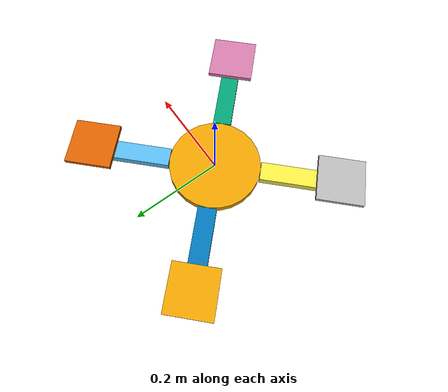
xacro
<?xml version='1.0'?>

<robot name="rodrone" xmlns:xacro="http://www.ros.org/wiki/xacro">

  <link name='center_frame'>
    <pose>0 0 0.1 0 0 0</pose>

    <inertial>
      <mass value="15.0"/>
      <origin xyz="0.0 0 0.1" rpy=" 0 0 0"/>
      <inertia
          ixx="0.1" ixy="0" ixz="0"
          iyy="0.1" iyz="0"
          izz="0.1"
      />
    </inertial>

    <collision name='collision'>
      <geometry>
        <cylinder length="0.02" radius="0.1"/>
      </geometry>
    </collision>

    <visual name='center_frame_visual'>
      <origin xyz="0 0 0" rpy=" 0 0 0"/>
      <geometry>
        <cylinder length="0.02" radius="0.1"/>
      </geometry>
    </visual>
  </link>

  <link name="pos_pos_arm">
    <collision name="collision">
      <origin xyz="0.1 0 0" rpy="0 0 0"/>
      <geometry>
        <box size="0.2 0.04 0.02"/>
      </geometry>
    </collision>
    <visual name="pos_pos_arm_visual">
      <origin xyz="0.1 0 0" rpy="0 0 0"/>
      <geometry>
        <box size="0.2 0.04 0.02"/>
      </geometry>
    </visual>
    <inertial>
      <origin xyz="0.1 0 0" rpy="0 0 0"/>
      <mass value="5"/>
      <inertia
        ixx=".1" ixy="0.0" ixz="0.0"
        iyy=".1" iyz="0.0"
        izz=".1"/>
    </inertial>
  </link>

  <link name="neg_pos_arm">
    <collision name="collision">
      <origin xyz="0.1 0 0" rpy="0 0 0"/>
      <geometry>
        <box size="0.2 0.04 0.02"/>
      </geometry>
    </collision>
    <visual name="neg_pos_arm_visual">
      <origin xyz="0.1 0 0" rpy="0 0 0"/>
      <geometry>
        <box size="0.2 0.04 0.02"/>
      </geometry>
    </visual>
    <inertial>
      <origin xyz="0.1 0 0" rpy="0 0 0"/>
      <mass value="5"/>
      <inertia
        ixx=".1" ixy="0.0" ixz="0.0"
        iyy=".1" iyz="0.0"
        izz=".1"/>
    </inertial>
  </link>

  <link name="neg_neg_arm">
    <collision name="collision">
      <origin xyz="0.1 0 0" rpy="0 0 0"/>
      <geometry>
        <box size="0.2 0.04 0.02"/>
      </geometry>
    </collision>
    <visual name="neg_neg_arm_visual">
      <origin xyz="0.1 0 0" rpy="0 0 0"/>
      <geometry>
        <box size="0.2 0.04 0.02"/>
      </geometry>
    </visual>
    <inertial>
      <origin xyz="0.1 0 0" rpy="0 0 0"/>
      <mass value="5"/>
      <inertia
        ixx=".1" ixy="0.0" ixz="0.0"
        iyy=".1" iyz="0.0"
        izz=".1"/>
    </inertial>
  </link>

  <link name="pos_neg_arm">
    <collision name="collision">
      <origin xyz="0.1 0 0" rpy="0 0 0"/>
      <geometry>
        <box size="0.2 0.04 0.02"/>
      </geometry>
    </collision>
    <visual name="pos_neg_arm_visual">
      <origin xyz="0.1 0 0" rpy="0 0 0"/>
      <geometry>
        <box size="0.2 0.04 0.02"/>
      </geometry>
    </visual>
    <inertial>
      <origin xyz="0.1 0 0" rpy="0 0 0"/>
      <mass value="5"/>
      <inertia
        ixx=".1" ixy="0.0" ixz="0.0"
        iyy=".1" iyz="0.0"
        izz=".1"/>
    </inertial>
  </link>

  <link name="pos_pos_rotor">
    <collision name="collision">
      <origin xyz="0 0 0" rpy="0 0 0"/>
      <geometry>
        <cylinder length="0.01" radius="0.05"/>
      </geometry>
    </collision>
    <visual name="pos_pos_rotor_visual">
      <origin xyz="0 0 0" rpy="0 0 0"/>
      <geometry>
        <box size="0.1 0.1 0.01"/>
      </geometry>
    </visual>
    <inertial>
      <origin xyz="0.1 0 0" rpy="0 0 0"/>
      <mass value="5"/>
      <inertia
        ixx=".1" ixy="0.0" ixz="0.0"
        iyy=".1" iyz="0.0"
        izz=".1"/>
    </inertial>
  </link>

  <link name="neg_pos_rotor">
    <collision name="collision">
      <origin xyz="0 0 0" rpy="0 0 0"/>
      <geometry>
        <cylinder length="0.01" radius="0.05"/>
      </geometry>
    </collision>
    <visual name="neg_pos_rotor_visual">
      <origin xyz="0 0 0" rpy="0 0 0"/>
      <geometry>
        <box size="0.1 0.1 0.01"/>
      </geometry>
    </visual>
    <inertial>
      <origin xyz="0.1 0 0" rpy="0 0 0"/>
      <mass value="5"/>
      <inertia
        ixx=".1" ixy="0.0" ixz="0.0"
        iyy=".1" iyz="0.0"
        izz=".1"/>
    </inertial>
  </link>

  <link name="neg_neg_rotor">
    <collision name="collision">
      <origin xyz="0 0 0" rpy="0 0 0"/>
      <geometry>
        <cylinder length="0.01" radius="0.05"/>
      </geometry>
    </collision>
    <visual name="neg_neg_rotor_visual">
      <origin xyz="0 0 0" rpy="0 0 0"/>
      <geometry>
        <box size="0.1 0.1 0.01"/>
      </geometry>
    </visual>
    <inertial>
      <origin xyz="0.1 0 0" rpy="0 0 0"/>
      <mass value="5"/>
      <inertia
        ixx=".1" ixy="0.0" ixz="0.0"
        iyy=".1" iyz="0.0"
        izz=".1"/>
    </inertial>
  </link>

  <link name="pos_neg_rotor">
    <collision name="collision">
      <origin xyz="0 0 0" rpy="0 -1.57079632679 0"/>
      <geometry>
        <cylinder length="0.01" radius="0.05"/>
      </geometry>
    </collision>
    <visual name="pos_neg_rotor_visual">
      <origin xyz="0 0 0" rpy="0 0 0"/>
      <geometry>
        <box size="0.1 0.1 0.01"/>
      </geometry>
    </visual>
    <inertial>
      <origin xyz="0.1 0 0" rpy="0 0 0"/>
      <mass value="5"/>
      <inertia
        ixx=".1" ixy="0.0" ixz="0.0"
        iyy=".1" iyz="0.0"
        izz=".1"/>
    </inertial>
  </link>

  <joint type="fixed" name="pos_pos_arm_joint">
    <origin xyz="0.0708 0.0708 0" rpy="0 0 0.78539816339"/>
    <child link="pos_pos_arm"/>
    <parent link="center_frame"/>
  </joint>

  <joint type="fixed" name="pos_neg_arm_joint">
    <origin xyz="-0.0708 0.0708 0" rpy="0 0 2.35619449019"/>
    <child link="pos_neg_arm"/>
    <parent link="center_frame"/>
  </joint>

  <joint type="fixed" name="neg_neg_arm_joint">
    <origin xyz="-0.0708 -0.0708 0" rpy="0 0 -2.35619449019"/>
    <child link="neg_neg_arm"/>
    <parent link="center_frame"/>
  </joint>

  <joint type="fixed" name="neg_pos_arm_joint">
    <origin xyz="0.0708 -0.0708 0" rpy="0 0 -0.78539816339"/>
    <child link="neg_pos_arm"/>
    <parent link="center_frame"/>
  </joint>

  <joint type="continuous" name="pos_pos_rotor_joint">
    <origin xyz="0.17 0 0.02" rpy="0 0 0"/>
    <child link="pos_pos_rotor"/>
    <parent link="pos_pos_arm"/>
    <axis xyz="0 0 1"/>
  </joint>

  <joint type="continuous" name="neg_pos_rotor_joint">
    <origin xyz="0.17 0 0.02" rpy="0 0 0"/>
    <child link="neg_pos_rotor"/>
    <parent link="neg_pos_arm"/>
    <axis xyz="0 0 1"/>
  </joint>

  <joint type="continuous" name="neg_neg_rotor_joint">
    <origin xyz="0.17 0 0.02" rpy="0 0 0"/>
    <child link="neg_neg_rotor"/>
    <parent link="neg_neg_arm"/>
    <axis xyz="0 0 1"/>
  </joint>

  <joint type="continuous" name="pos_neg_rotor_joint">
    <origin xyz="0.17 0 0.02" rpy="0 0 0"/>
    <child link="pos_neg_rotor"/>
    <parent link="pos_neg_arm"/>
    <axis xyz="0 0 1"/>
  </joint>

  <transmission name="transmission_pos_pos_rotor">
    <type>transmission_interface/SimpleTransmission</type>
    <joint name="pos_pos_rotor_joint">
        <hardwareInterface>hardware_interface/EffortJointInterface</hardwareInterface>
    </joint>
    <actuator name="motor_pos_pos_rotor">
        <mechanicalReduction>1</mechanicalReduction>
    </actuator>
  </transmission>

  <transmission name="transmission_pos_neg_rotor">
    <type>transmission_interface/SimpleTransmission</type>
    <joint name="pos_neg_rotor_joint">
        <hardwareInterface>hardware_interface/EffortJointInterface</hardwareInterface>
    </joint>
    <actuator name="motor_pos_neg_rotor">
        <hardwareInterface>hardware_interface/EffortJointInterface</hardwareInterface>
        <mechanicalReduction>1</mechanicalReduction>
    </actuator>
  </transmission>

  <transmission name="transmission_neg_neg_rotor">
    <type>transmission_interface/SimpleTransmission</type>
    <joint name="neg_neg_rotor_joint">
        <hardwareInterface>hardware_interface/EffortJointInterface</hardwareInterface>
    </joint>
    <actuator name="motor_neg_neg_rotor">
        <hardwareInterface>hardware_interface/EffortJointInterface</hardwareInterface>
        <mechanicalReduction>1</mechanicalReduction>
    </actuator>
  </transmission>

  <transmission name="transmission_neg_pos_rotor">
    <type>transmission_interface/SimpleTransmission</type>
    <joint name="neg_pos_rotor_joint">
        <hardwareInterface>hardware_interface/EffortJointInterface</hardwareInterface>
    </joint>
    <actuator name="motor_neg_pos_rotor">
        <hardwareInterface>hardware_interface/EffortJointInterface</hardwareInterface>
        <mechanicalReduction>1</mechanicalReduction>
    </actuator>
  </transmission>

  <gazebo>
    <plugin name="gazebo_ros_control" filename="libgazebo_ros_control.so">
      <robotNamespace>/rodrone</robotNamespace>
      <legacyModeNS>true</legacyModeNS>
    </plugin>
  </gazebo>

  <gazebo>
    <plugin name="rodrone_plugin" filename="librodrone_plugin.so"/>
  </gazebo>
</robot>
